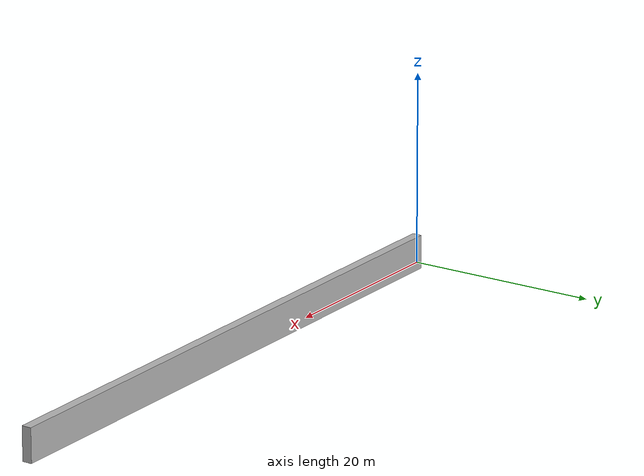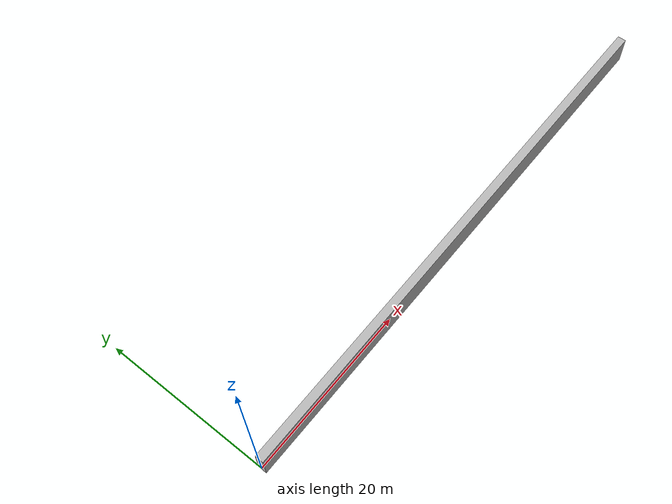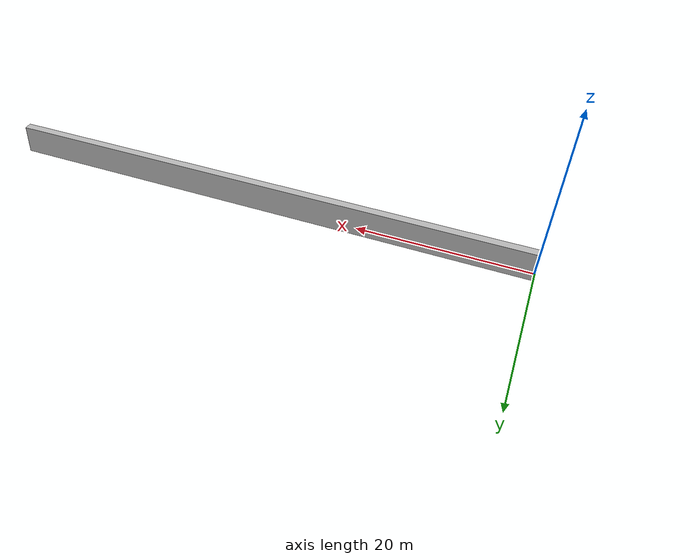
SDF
<?xml version='1.0' encoding='UTF-8'?>

<sdf version="1.6">
  <model name="Warehouse_Shelf_Dummy">
    <link name='warehouse_shelf'>
    <pose frame=''>32.5 0 1.2502 0 -0 0</pose>
      <inertial>
        <mass>100</mass>
        <inertia>
          <ixx>418.416</ixx>
          <ixy>0</ixy>
          <ixz>0</ixz>
          <iyy>460.293</iyy>
          <iyz>0</iyz>
          <izz>60.1749</izz>
        </inertia>
      </inertial>
      <gravity>1</gravity>
      <self_collide>0</self_collide>
      <kinematic>0</kinematic>
      <enable_wind>0</enable_wind>
      <visual name='visual'>
        <pose frame=''>0 0 0 0 -0 0</pose>
        <geometry>
          <box>
            <size>65 1 3.504</size>
          </box>
        </geometry>
        <transparency>0</transparency>
        <cast_shadows>0</cast_shadows>
      </visual>
      <collision name='collision'>
        <laser_retro>0</laser_retro>
        <pose frame=''>0 0 0 0 0 0</pose>
        <geometry>
          <box>
            <size>65 1 3.504</size>
          </box>
        </geometry>
      </collision>
    </link>
    <static>1</static>
  </model>
</sdf>
